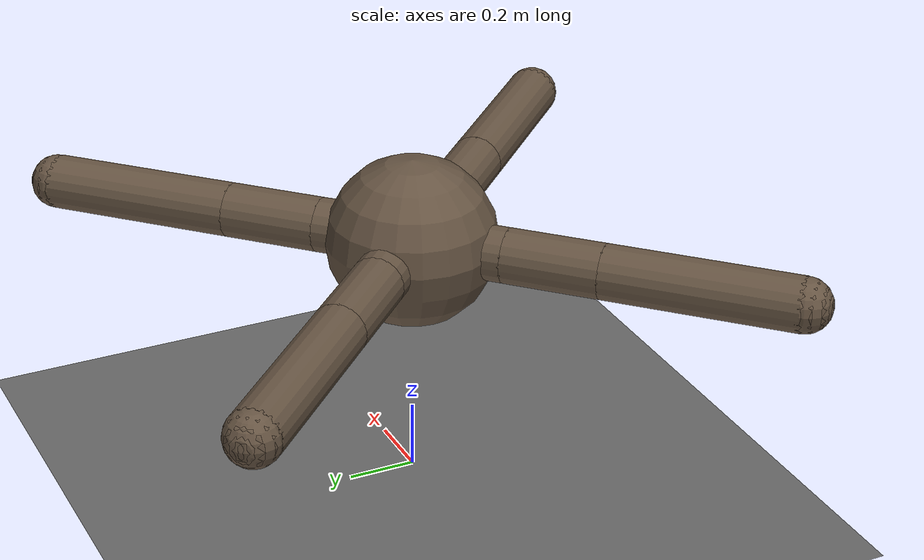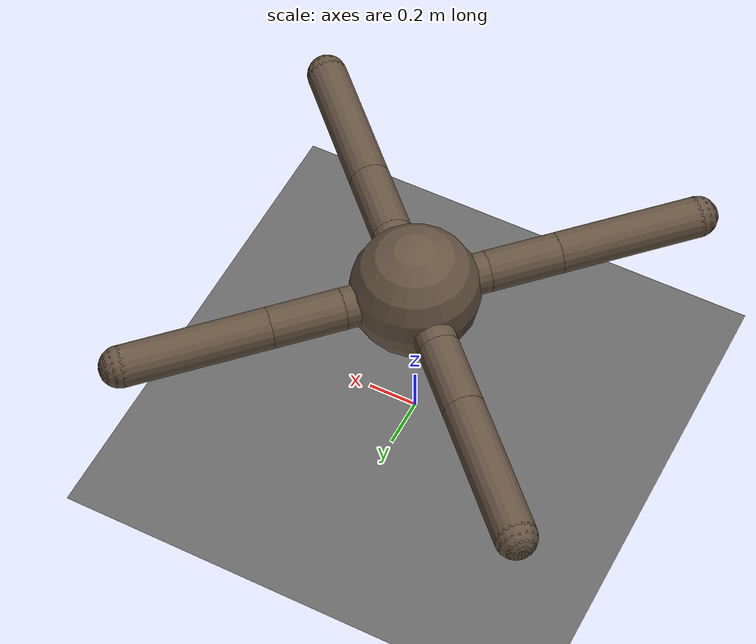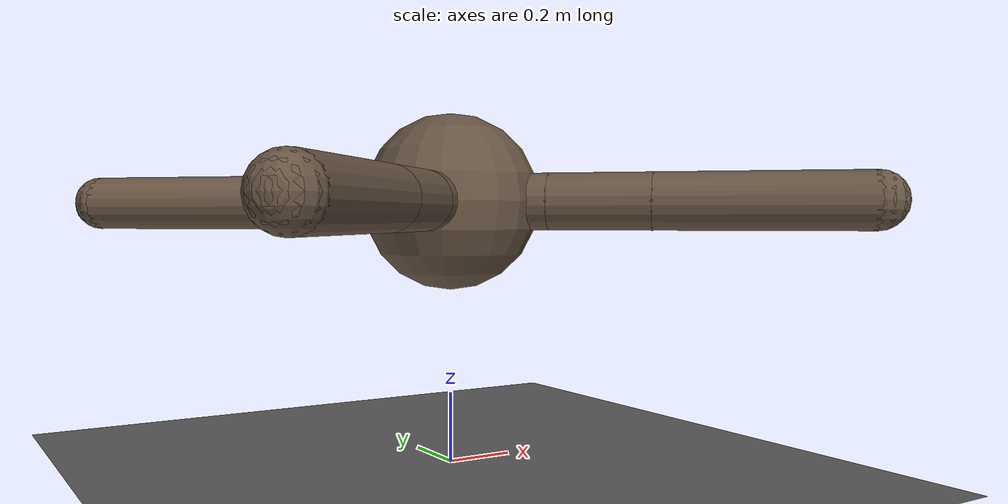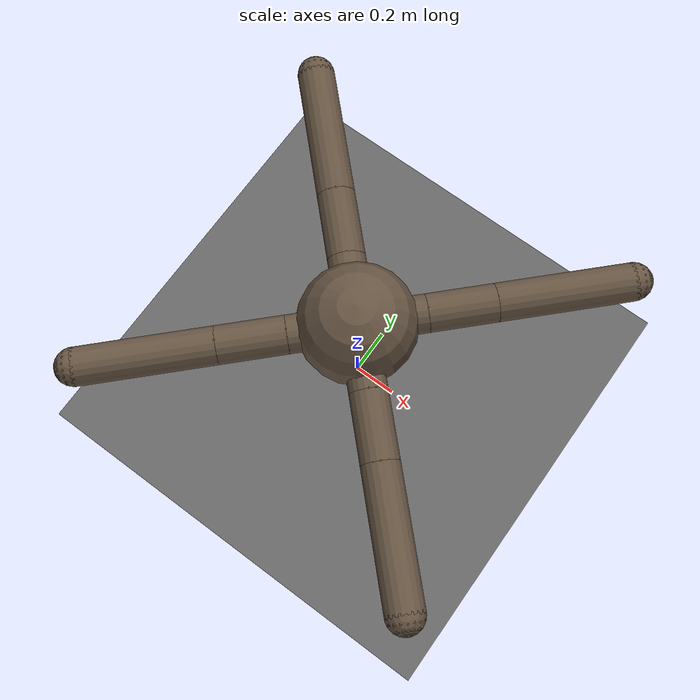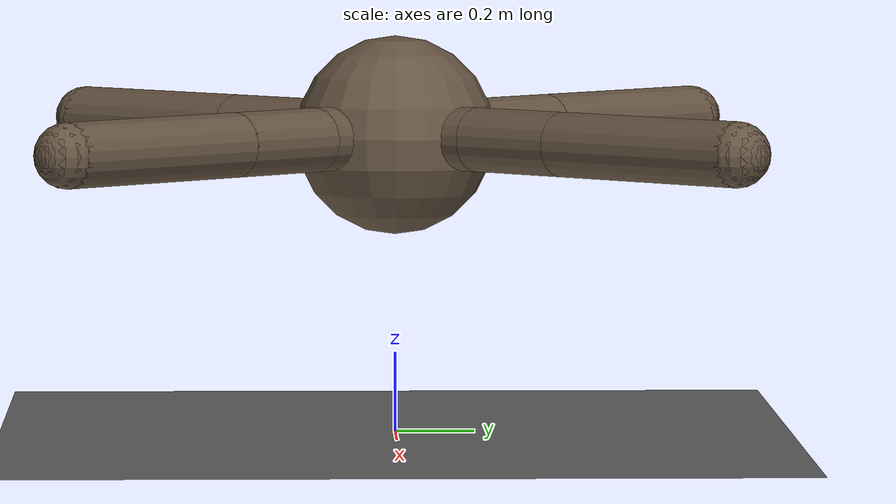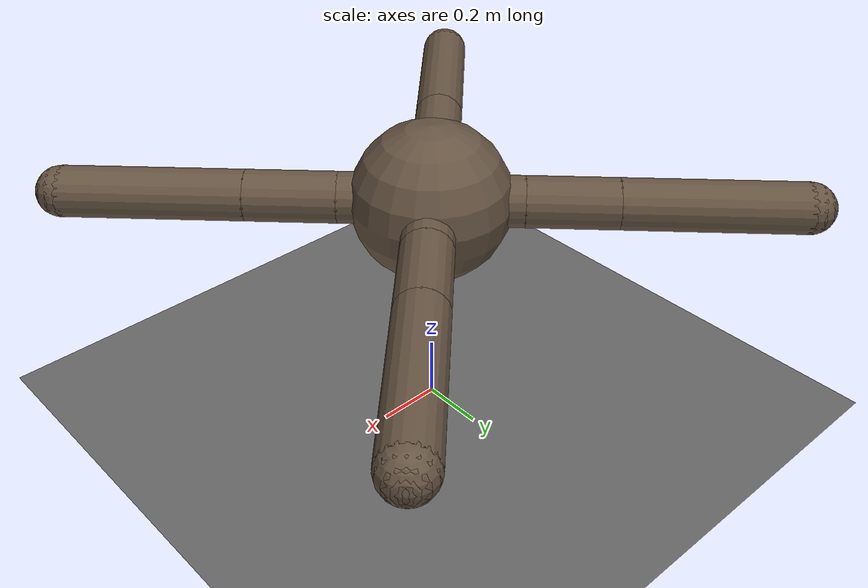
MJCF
<mujoco model="ant flat terrain scene">
  <include file="ant.xml"/>

  <statistic center="0 0 0.1" extent="0.8" meansize="0.04"/>

  <visual>
    <headlight diffuse=".8 .8 .8" ambient=".2 .2 .2" specular="1 1 1"/>
    <rgba force="1 0 0 1"/>
    <global azimuth="120" elevation="-20"/>
    <map force="0.01"/>
    <scale forcewidth="0.3" contactwidth="0.5" contactheight="0.2"/>
    <quality shadowsize="8192"/>
  </visual>

  <asset>
    <texture type="skybox" builtin="gradient" rgb1="1 1 1" rgb2="1 1 1" width="800" height="800"/>
    <texture type="2d" name="groundplane" builtin="checker" mark="edge" rgb1="1 1 1" rgb2="1 1 1" markrgb="0 0 0"
      width="300" height="300"/>
    <material name="groundplane" texture="groundplane" texuniform="true"
              texrepeat="5 5" reflectance="0"/>
  </asset>

  <worldbody>
    <geom name="floor" size="0 0 0.01" type="plane" material="groundplane"
          contype="1" conaffinity="0" priority="1" friction="0.6" condim="3"/>
  </worldbody>

  <keyframe>
    <key name="home"
      qpos="
    0 0 0.7
    1 0 0 0
    0.0 0.0 -0.463 0.983 -0.350
    0.0 -0.0 -0.463 0.983 -0.350"
      ctrl="
    0.0 0.0 0.0 0.0
    0.0 0.0 0.0 0.0"/>
  </keyframe>
</mujoco>

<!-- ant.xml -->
<mujoco model="ant">
  <compiler angle="degree" coordinate="local" inertiafromgeom="true"/>

  <option iterations="3" ls_iterations="5" timestep="0.001" integrator="Euler">
    <flag eulerdamp="disable"/>
  </option>

  <default>
    <joint armature="1" damping="1" limited="true"/>
    <geom contype="0" conaffinity="0" condim="3" density="5.0" friction="1 0.5 0.5"
     rgba="0.4 0.33 0.26 1.0"/>
  </default>
  <asset>
    <texture builtin="gradient" height="100" rgb1="1 1 1" rgb2="0 0 0" type="skybox" width="100"/>
    <texture builtin="flat" height="1278" mark="cross" markrgb="1 1 1" name="texgeom" random="0.01" rgb1="0.8 0.6 0.4" rgb2="0.8 0.6 0.4" type="cube" width="127"/>
    <texture builtin="checker" height="100" name="texplane" rgb1="0 0 0" rgb2="0.8 0.8 0.8" type="2d" width="100"/>
    <material name="MatPlane" reflectance="0.5" shininess="1" specular="1" texrepeat="60 60" texture="texplane"/>
    <material name="geom" texture="texgeom" texuniform="true"/>
  </asset>
  <worldbody>
    <light cutoff="100" diffuse="1 1 1" dir="-0 0 -1.3" directional="true" exponent="1" pos="0 0 1.3" specular=".1 .1 .1"/>
    <geom conaffinity="1" condim="3" material="MatPlane" name="floor" pos="0 0 0" size="40 40 40" type="plane" rgba="0.5 0.5 0.5 1.0"/>
    <body name="torso" pos="0 0 0.75">
      <camera name="track" mode="trackcom" pos="0 -3 0.3" xyaxes="1 0 0 0 0 1"/>
      <geom name="torso_geom" pos="0 0 0" size="0.25" type="sphere"/>
      <joint armature="0" damping="0" limited="false" margin="0.01" name="root" pos="0 0 0" type="free"/>
      <body name="front_left_leg" pos="0 0 0">
        <geom fromto="0.0 0.0 0.0 0.2 0.2 0.0" name="aux_1_geom" size="0.08" type="capsule"/>
        <body name="aux_1" pos="0.2 0.2 0">
          <joint axis="0 0 1" name="hip_1" pos="0.0 0.0 0.0" range="-30 30" type="hinge"/>
          <geom fromto="0.0 0.0 0.0 0.2 0.2 0.0" name="left_leg_geom" size="0.08" type="capsule"/>
          <body pos="0.2 0.2 0">
            <joint axis="-1 1 0" name="ankle_1" pos="0.0 0.0 0.0" range="30 70" type="hinge"/>
            <geom fromto="0.0 0.0 0.0 0.4 0.4 0.0" name="left_ankle_geom" size="0.08" type="capsule"/>
            <geom name="left_foot_geom" contype="1" pos="0.4 0.4 0" size="0.08" type="sphere" mass="0"/>
          </body>
        </body>
      </body>
      <body name="front_right_leg" pos="0 0 0">
        <geom fromto="0.0 0.0 0.0 -0.2 0.2 0.0" name="aux_2_geom" size="0.08" type="capsule"/>
        <body name="aux_2" pos="-0.2 0.2 0">
          <joint axis="0 0 1" name="hip_2" pos="0.0 0.0 0.0" range="-30 30" type="hinge"/>
          <geom fromto="0.0 0.0 0.0 -0.2 0.2 0.0" name="right_leg_geom" size="0.08" type="capsule"/>
          <body pos="-0.2 0.2 0">
            <joint axis="1 1 0" name="ankle_2" pos="0.0 0.0 0.0" range="-70 -30" type="hinge"/>
            <geom fromto="0.0 0.0 0.0 -0.4 0.4 0.0" name="right_ankle_geom" size="0.08" type="capsule"/>
            <geom name="right_foot_geom" contype="1" pos="-0.4 0.4 0" size="0.08" type="sphere" mass="0"/>
          </body>
        </body>
      </body>
      <body name="back_leg" pos="0 0 0">
        <geom fromto="0.0 0.0 0.0 -0.2 -0.2 0.0" name="aux_3_geom" size="0.08" type="capsule"/>
        <body name="aux_3" pos="-0.2 -0.2 0">
          <joint axis="0 0 1" name="hip_3" pos="0.0 0.0 0.0" range="-30 30" type="hinge"/>
          <geom fromto="0.0 0.0 0.0 -0.2 -0.2 0.0" name="back_leg_geom" size="0.08" type="capsule"/>
          <body pos="-0.2 -0.2 0">
            <joint axis="-1 1 0" name="ankle_3" pos="0.0 0.0 0.0" range="-70 -30" type="hinge"/>
            <geom fromto="0.0 0.0 0.0 -0.4 -0.4 0.0" name="third_ankle_geom" size="0.08" type="capsule"/>
            <geom name="third_foot_geom" contype="1" pos="-0.4 -0.4 0" size="0.08" type="sphere" mass="0"/>
          </body>
        </body>
      </body>
      <body name="right_back_leg" pos="0 0 0">
        <geom fromto="0.0 0.0 0.0 0.2 -0.2 0.0" name="aux_4_geom" size="0.08" type="capsule"/>
        <body name="aux_4" pos="0.2 -0.2 0">
          <joint axis="0 0 1" name="hip_4" pos="0.0 0.0 0.0" range="-30 30" type="hinge"/>
          <geom fromto="0.0 0.0 0.0 0.2 -0.2 0.0" name="rightback_leg_geom" size="0.08" type="capsule"/>
          <body pos="0.2 -0.2 0">
            <joint axis="1 1 0" name="ankle_4" pos="0.0 0.0 0.0" range="30 70" type="hinge"/>
            <geom fromto="0.0 0.0 0.0 0.4 -0.4 0.0" name="fourth_ankle_geom" size="0.08" type="capsule"/>
            <geom name="fourth_foot_geom" contype="1" pos="0.4 -0.4 0" size="0.08" type="sphere" mass="0"/>
          </body>
        </body>
      </body>
    </body>
  </worldbody>
  <actuator>
    <motor ctrllimited="true" ctrlrange="-1.0 1.0" joint="hip_4" gear="150" name="hip_4"/>
    <motor ctrllimited="true" ctrlrange="-1.0 1.0" joint="ankle_4" gear="150" name="ankle_4"/>
    <motor ctrllimited="true" ctrlrange="-1.0 1.0" joint="hip_1" gear="150" name="hip_1"/>
    <motor ctrllimited="true" ctrlrange="-1.0 1.0" joint="ankle_1" gear="150" name="ankle_1"/>
    <motor ctrllimited="true" ctrlrange="-1.0 1.0" joint="hip_2" gear="150" name="hip_2"/>
    <motor ctrllimited="true" ctrlrange="-1.0 1.0" joint="ankle_2" gear="150" name="ankle_2"/>
    <motor ctrllimited="true" ctrlrange="-1.0 1.0" joint="hip_3" gear="150" name="hip_3"/>
    <motor ctrllimited="true" ctrlrange="-1.0 1.0" joint="ankle_3" gear="150" name="ankle_3"/>
  </actuator>

    <keyframe>
    <key name="home"
      qpos="
    0 0 0.7
    1 0 0 0
    0.0 0.0 0.0 0.0
    0.0 0.0 0.0 0.0"
      ctrl="
    0.0 0.0 0.0 0.0
    0.0 0.0 0.0 0.0"/>
  </keyframe>

</mujoco>
